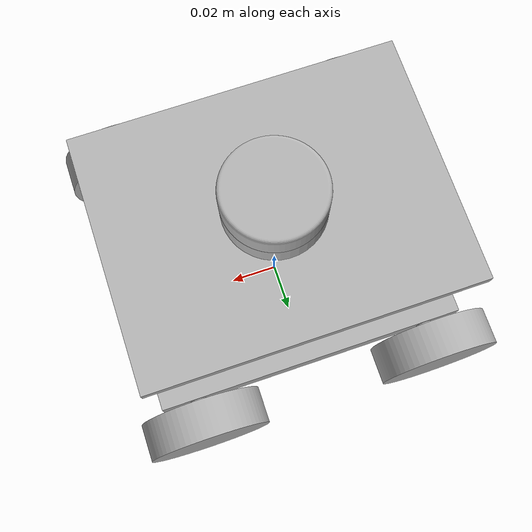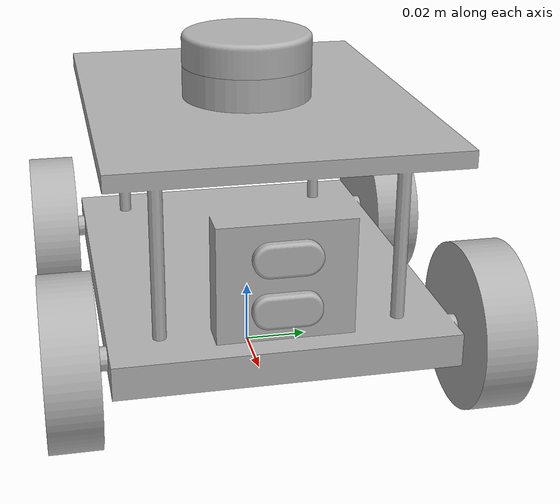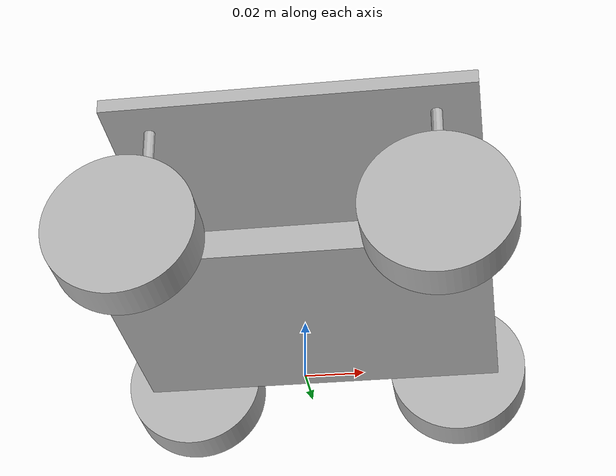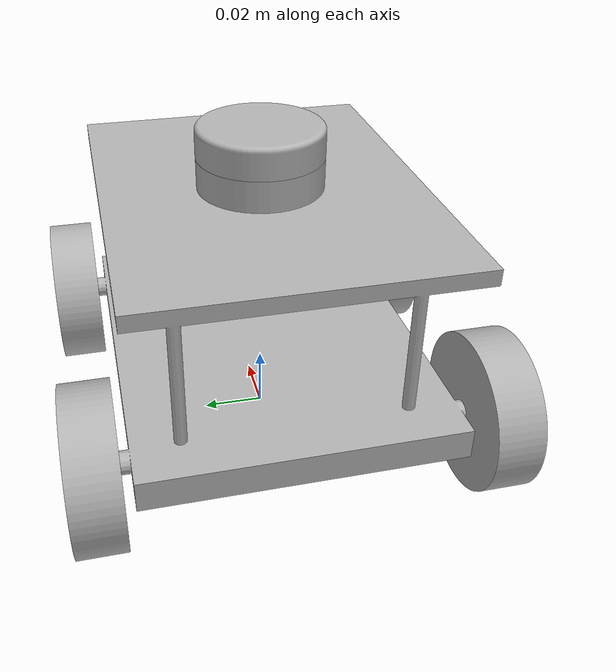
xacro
<?xml version="1.0" ?>
<robot name="basicBoomBot" xmlns:xacro="http://www.ros.org/wiki/xacro">

<xacro:include filename="$(find basicBoomBot_description)/urdf/materials.xacro" />
<xacro:include filename="$(find basicBoomBot_description)/urdf/basicBoomBot.trans" />
<xacro:include filename="$(find basicBoomBot_description)/urdf/basicBoomBot.gazebo" />
<link name="base_link">
  <inertial>
    <origin xyz="0.0029896973924744713 0.0 0.046973389333056365" rpy="0 0 0"/>
    <mass value="0.2880192546991266"/>
    <inertia ixx="0.00044" iyy="0.000629" izz="0.000627" ixy="0.0" iyz="0.0" ixz="0.0"/>
  </inertial>
  <visual>
    <origin xyz="0 0 0" rpy="0 0 0"/>
    <geometry>
      <mesh filename="package://basicBoomBot_description/meshes/base_link.stl" scale="0.001 0.001 0.001"/>
    </geometry>
    <material name="silver"/>
  </visual>
  <collision>
    <origin xyz="0 0 0" rpy="0 0 0"/>
    <geometry>
      <mesh filename="package://basicBoomBot_description/meshes/base_link.stl" scale="0.001 0.001 0.001"/>
    </geometry>
  </collision>
</link>

<link name="wheel_fl_1">
  <inertial>
    <origin xyz="0.0 0.007500000000000007 -6.938893903907228e-18" rpy="0 0 0"/>
    <mass value="0.03799363615435155"/>
    <inertia ixx="7e-06" iyy="1.2e-05" izz="7e-06" ixy="0.0" iyz="-0.0" ixz="0.0"/>
  </inertial>
  <visual>
    <origin xyz="-0.05 -0.053 -0.025" rpy="0 0 0"/>
    <geometry>
      <mesh filename="package://basicBoomBot_description/meshes/wheel_fl_1.stl" scale="0.001 0.001 0.001"/>
    </geometry>
    <material name="silver"/>
  </visual>
  <collision>
    <origin xyz="-0.05 -0.053 -0.025" rpy="0 0 0"/>
    <geometry>
      <mesh filename="package://basicBoomBot_description/meshes/wheel_fl_1.stl" scale="0.001 0.001 0.001"/>
    </geometry>
  </collision>
</link>

<link name="wheel_bl_1">
  <inertial>
    <origin xyz="0.0 0.007500000000000007 -6.938893903907228e-18" rpy="0 0 0"/>
    <mass value="0.03799363615435155"/>
    <inertia ixx="7e-06" iyy="1.2e-05" izz="7e-06" ixy="-0.0" iyz="-0.0" ixz="-0.0"/>
  </inertial>
  <visual>
    <origin xyz="0.05 -0.053 -0.025" rpy="0 0 0"/>
    <geometry>
      <mesh filename="package://basicBoomBot_description/meshes/wheel_bl_1.stl" scale="0.001 0.001 0.001"/>
    </geometry>
    <material name="silver"/>
  </visual>
  <collision>
    <origin xyz="0.05 -0.053 -0.025" rpy="0 0 0"/>
    <geometry>
      <mesh filename="package://basicBoomBot_description/meshes/wheel_bl_1.stl" scale="0.001 0.001 0.001"/>
    </geometry>
  </collision>
</link>

<link name="wheel_br_1">
  <inertial>
    <origin xyz="0.0 -0.0075 -6.938893903907228e-18" rpy="0 0 0"/>
    <mass value="0.03799363615435155"/>
    <inertia ixx="7e-06" iyy="1.2e-05" izz="7e-06" ixy="0.0" iyz="0.0" ixz="-0.0"/>
  </inertial>
  <visual>
    <origin xyz="0.05 0.053 -0.025" rpy="0 0 0"/>
    <geometry>
      <mesh filename="package://basicBoomBot_description/meshes/wheel_br_1.stl" scale="0.001 0.001 0.001"/>
    </geometry>
    <material name="silver"/>
  </visual>
  <collision>
    <origin xyz="0.05 0.053 -0.025" rpy="0 0 0"/>
    <geometry>
      <mesh filename="package://basicBoomBot_description/meshes/wheel_br_1.stl" scale="0.001 0.001 0.001"/>
    </geometry>
  </collision>
</link>

<link name="wheel_fr_1">
  <inertial>
    <origin xyz="0.0 -0.0075 -6.938893903907228e-18" rpy="0 0 0"/>
    <mass value="0.03799363615435155"/>
    <inertia ixx="7e-06" iyy="1.2e-05" izz="7e-06" ixy="-0.0" iyz="0.0" ixz="0.0"/>
  </inertial>
  <visual>
    <origin xyz="-0.05 0.053 -0.025" rpy="0 0 0"/>
    <geometry>
      <mesh filename="package://basicBoomBot_description/meshes/wheel_fr_1.stl" scale="0.001 0.001 0.001"/>
    </geometry>
    <material name="silver"/>
  </visual>
  <collision>
    <origin xyz="-0.05 0.053 -0.025" rpy="0 0 0"/>
    <geometry>
      <mesh filename="package://basicBoomBot_description/meshes/wheel_fr_1.stl" scale="0.001 0.001 0.001"/>
    </geometry>
  </collision>
</link>

<link name="lidar_1">
  <inertial>
    <origin xyz="-2.840646112429589e-18 0.0 0.004977758094415835" rpy="0 0 0"/>
    <mass value="0.016133655739795163"/>
    <inertia ixx="2e-06" iyy="2e-06" izz="3e-06" ixy="0.0" iyz="-0.0" ixz="-0.0"/>
  </inertial>
  <visual>
    <origin xyz="-0.0 -0.0 -0.095" rpy="0 0 0"/>
    <geometry>
      <mesh filename="package://basicBoomBot_description/meshes/lidar_1.stl" scale="0.001 0.001 0.001"/>
    </geometry>
    <material name="silver"/>
  </visual>
  <collision>
    <origin xyz="-0.0 -0.0 -0.095" rpy="0 0 0"/>
    <geometry>
      <mesh filename="package://basicBoomBot_description/meshes/lidar_1.stl" scale="0.001 0.001 0.001"/>
    </geometry>
  </collision>
</link>

<link name="camera_1">
  <inertial>
    <origin xyz="0.004971127746877635 -1.2511913814258638e-18 6.938893903907228e-18" rpy="0 0 0"/>
    <mass value="0.0022893183617270826"/>
    <inertia ixx="0.0" iyy="0.0" izz="0.0" ixy="-0.0" iyz="0.0" ixz="0.0"/>
  </inertial>
  <visual>
    <origin xyz="-0.0505 -0.0 -0.055" rpy="0 0 0"/>
    <geometry>
      <mesh filename="package://basicBoomBot_description/meshes/camera_1.stl" scale="0.001 0.001 0.001"/>
    </geometry>
    <material name="silver"/>
  </visual>
  <collision>
    <origin xyz="-0.0505 -0.0 -0.055" rpy="0 0 0"/>
    <geometry>
      <mesh filename="package://basicBoomBot_description/meshes/camera_1.stl" scale="0.001 0.001 0.001"/>
    </geometry>
  </collision>
</link>

<link name="ultrasonic_sensor_1">
  <inertial>
    <origin xyz="0.0014740953993110303 4.288151633186198e-18 -6.938893903907228e-18" rpy="0 0 0"/>
    <mass value="0.000692645854851481"/>
    <inertia ixx="0.0" iyy="0.0" izz="0.0" ixy="0.0" iyz="-0.0" ixz="0.0"/>
  </inertial>
  <visual>
    <origin xyz="-0.0575 -0.0 -0.0395" rpy="0 0 0"/>
    <geometry>
      <mesh filename="package://basicBoomBot_description/meshes/ultrasonic_sensor_1.stl" scale="0.001 0.001 0.001"/>
    </geometry>
    <material name="silver"/>
  </visual>
  <collision>
    <origin xyz="-0.0575 -0.0 -0.0395" rpy="0 0 0"/>
    <geometry>
      <mesh filename="package://basicBoomBot_description/meshes/ultrasonic_sensor_1.stl" scale="0.001 0.001 0.001"/>
    </geometry>
  </collision>
</link>

<joint name="wheel_fl_joint" type="continuous">
  <origin xyz="0.05 0.053 0.025" rpy="0 0 0"/>
  <parent link="base_link"/>
  <child link="wheel_fl_1"/>
  <axis xyz="0.0 1.0 0.0"/>
</joint>

<joint name="wheel_bl_joint" type="continuous">
  <origin xyz="-0.05 0.053 0.025" rpy="0 0 0"/>
  <parent link="base_link"/>
  <child link="wheel_bl_1"/>
  <axis xyz="0.0 1.0 0.0"/>
</joint>

<joint name="wheel_br_joint" type="continuous">
  <origin xyz="-0.05 -0.053 0.025" rpy="0 0 0"/>
  <parent link="base_link"/>
  <child link="wheel_br_1"/>
  <axis xyz="0.0 -1.0 0.0"/>
</joint>

<joint name="wheel_fr_joint" type="continuous">
  <origin xyz="0.05 -0.053 0.025" rpy="0 0 0"/>
  <parent link="base_link"/>
  <child link="wheel_fr_1"/>
  <axis xyz="0.0 -1.0 0.0"/>
</joint>

<joint name="lidar_joint" type="fixed">
  <origin xyz="0.0 0.0 0.095" rpy="0 0 0"/>
  <parent link="base_link"/>
  <child link="lidar_1"/>
</joint>

<joint name="camera_joint" type="fixed">
  <origin xyz="0.0505 0.0 0.055" rpy="0 0 0"/>
  <parent link="base_link"/>
  <child link="camera_1"/>
</joint>

<joint name="Rigid7" type="fixed">
  <origin xyz="0.0575 0.0 0.0395" rpy="0 0 0"/>
  <parent link="base_link"/>
  <child link="ultrasonic_sensor_1"/>
</joint>

</robot>

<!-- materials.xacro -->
<robot name="basicBoomBot" xmlns:xacro="http://www.ros.org/wiki/xacro" >

<material name="silver">
  <color rgba="0.700 0.700 0.700 1.000"/>
</material>

</robot>

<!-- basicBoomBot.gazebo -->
<robot name="basicBoomBot" xmlns:xacro="http://www.ros.org/wiki/xacro" >

<xacro:property name="body_color" value="Gazebo/Silver" />

<gazebo>
  <plugin name="control" filename="libgazebo_ros_control.so"/>
</gazebo>
<gazebo reference="base_link">
  <material>${body_color}</material>
  <mu1>0.2</mu1>
  <mu2>0.2</mu2>
  <selfCollide>true</selfCollide>
  <gravity>true</gravity>
</gazebo>

<gazebo reference="wheel_fl_1">
  <material>${body_color}</material>
  <mu1>0.2</mu1>
  <mu2>0.2</mu2>
  <selfCollide>true</selfCollide>
</gazebo>

<gazebo reference="wheel_bl_1">
  <material>${body_color}</material>
  <mu1>0.2</mu1>
  <mu2>0.2</mu2>
  <selfCollide>true</selfCollide>
</gazebo>

<gazebo reference="wheel_br_1">
  <material>${body_color}</material>
  <mu1>0.2</mu1>
  <mu2>0.2</mu2>
  <selfCollide>true</selfCollide>
</gazebo>

<gazebo reference="wheel_fr_1">
  <material>${body_color}</material>
  <mu1>0.2</mu1>
  <mu2>0.2</mu2>
  <selfCollide>true</selfCollide>
</gazebo>

<gazebo reference="lidar_1">
  <material>${body_color}</material>
  <mu1>0.2</mu1>
  <mu2>0.2</mu2>
  <selfCollide>true</selfCollide>
</gazebo>

<gazebo reference="camera_1">
  <material>${body_color}</material>
  <mu1>0.2</mu1>
  <mu2>0.2</mu2>
  <selfCollide>true</selfCollide>
</gazebo>

<gazebo reference="ultrasonic_sensor_1">
  <material>${body_color}</material>
  <mu1>0.2</mu1>
  <mu2>0.2</mu2>
  <selfCollide>true</selfCollide>
</gazebo>

</robot>
